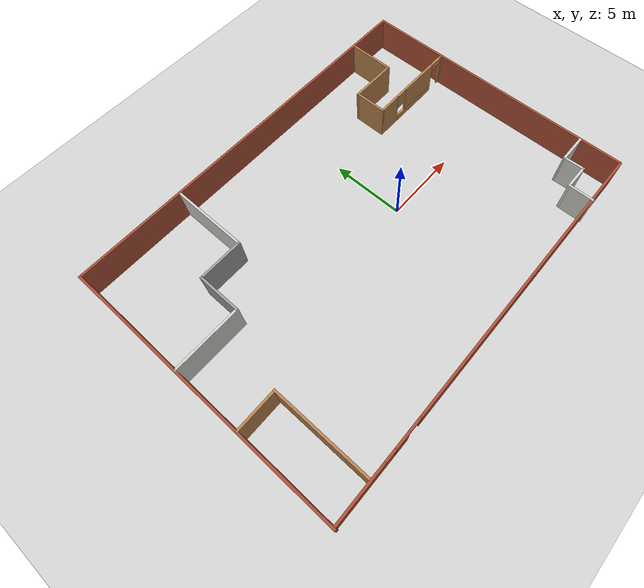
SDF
<sdf version="1.4">
 <world name="default">
  <include><uri>model://ground_plane</uri></include>
  <include><uri>model://sun</uri></include>
  <include><uri>model://amb2</uri></include>
 </world>
</sdf>

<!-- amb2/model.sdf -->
<sdf version='1.7'>
  <model name='amb2'>
    <pose>-2.71933 0.362005 0 0 -0 0</pose>
    <link name='Wall_1'>
      <pose>-0.000241 -9.48906 0 0 -0 0</pose>
      <visual name='Wall_1_Visual_0'>
        <pose>-11.393 0 1.25 0 -0 0</pose>
        <geometry>
          <box>
            <size>3.7141 0.15 2.5</size>
          </box>
        </geometry>
        <material>
          <script>
            <uri>file://media/materials/scripts/gazebo.material</uri>
            <name>Gazebo/Bricks</name>
          </script>
          <ambient>1 1 1 1</ambient>
        </material>
        <meta>
          <layer>0</layer>
        </meta>
      </visual>
      <collision name='Wall_1_Collision_0'>
        <geometry>
          <box>
            <size>3.7141 0.15 2.5</size>
          </box>
        </geometry>
        <pose>-11.393 0 1.25 0 -0 0</pose>
      </collision>
      <visual name='Wall_1_Visual_1'>
        <pose>3.2402 0 1.25 0 -0 0</pose>
        <geometry>
          <box>
            <size>20.0196 0.15 2.5</size>
          </box>
        </geometry>
        <material>
          <script>
            <uri>file://media/materials/scripts/gazebo.material</uri>
            <name>Gazebo/Bricks</name>
          </script>
          <ambient>1 1 1 1</ambient>
        </material>
        <meta>
          <layer>0</layer>
        </meta>
      </visual>
      <collision name='Wall_1_Collision_1'>
        <geometry>
          <box>
            <size>20.0196 0.15 2.5</size>
          </box>
        </geometry>
        <pose>3.2402 0 1.25 0 -0 0</pose>
      </collision>
      <visual name='Wall_1_Visual_2'>
        <pose>-8.60275 0 0.25 0 -0 0</pose>
        <geometry>
          <box>
            <size>1.8663 0.15 0.5</size>
          </box>
        </geometry>
        <material>
          <script>
            <uri>file://media/materials/scripts/gazebo.material</uri>
            <name>Gazebo/Bricks</name>
          </script>
          <ambient>1 1 1 1</ambient>
        </material>
        <meta>
          <layer>0</layer>
        </meta>
      </visual>
      <collision name='Wall_1_Collision_2'>
        <geometry>
          <box>
            <size>1.8663 0.15 0.5</size>
          </box>
        </geometry>
        <pose>-8.60275 0 0.25 0 -0 0</pose>
      </collision>
      <visual name='Wall_1_Visual_3'>
        <pose>-8.20275 0 1.5 0 -0 0</pose>
        <geometry>
          <box>
            <size>1.0663 0.15 2</size>
          </box>
        </geometry>
        <material>
          <script>
            <uri>file://media/materials/scripts/gazebo.material</uri>
            <name>Gazebo/Bricks</name>
          </script>
          <ambient>1 1 1 1</ambient>
        </material>
        <meta>
          <layer>0</layer>
        </meta>
      </visual>
      <collision name='Wall_1_Collision_3'>
        <geometry>
          <box>
            <size>1.0663 0.15 2</size>
          </box>
        </geometry>
        <pose>-8.20275 0 1.5 0 -0 0</pose>
      </collision>
      <visual name='Wall_1_Visual_4'>
        <pose>-9.1359 0 1.9 0 -0 0</pose>
        <geometry>
          <box>
            <size>0.8 0.15 1.2</size>
          </box>
        </geometry>
        <material>
          <script>
            <uri>file://media/materials/scripts/gazebo.material</uri>
            <name>Gazebo/Bricks</name>
          </script>
          <ambient>1 1 1 1</ambient>
        </material>
        <meta>
          <layer>0</layer>
        </meta>
      </visual>
      <collision name='Wall_1_Collision_4'>
        <geometry>
          <box>
            <size>0.8 0.15 1.2</size>
          </box>
        </geometry>
        <pose>-9.1359 0 1.9 0 -0 0</pose>
      </collision>
      <visual name='Wall_1_Visual_5'>
        <pose>-7.2196 0 2.25 0 -0 0</pose>
        <geometry>
          <box>
            <size>0.9 0.15 0.5</size>
          </box>
        </geometry>
        <material>
          <script>
            <uri>file://media/materials/scripts/gazebo.material</uri>
            <name>Gazebo/Bricks</name>
          </script>
          <ambient>1 1 1 1</ambient>
        </material>
        <meta>
          <layer>0</layer>
        </meta>
      </visual>
      <collision name='Wall_1_Collision_5'>
        <geometry>
          <box>
            <size>0.9 0.15 0.5</size>
          </box>
        </geometry>
        <pose>-7.2196 0 2.25 0 -0 0</pose>
      </collision>
    </link>
    <link name='Wall_10'>
      <collision name='Wall_10_Collision'>
        <geometry>
          <box>
            <size>3.25 0.15 2.5</size>
          </box>
        </geometry>
        <pose>0 0 1.25 0 -0 0</pose>
      </collision>
      <visual name='Wall_10_Visual'>
        <pose>0 0 1.25 0 -0 0</pose>
        <geometry>
          <box>
            <size>3.25 0.15 2.5</size>
          </box>
        </geometry>
        <material>
          <script>
            <uri>file://media/materials/scripts/gazebo.material</uri>
            <name>Gazebo/Wood</name>
          </script>
          <ambient>1 1 1 1</ambient>
        </material>
        <meta>
          <layer>0</layer>
        </meta>
      </visual>
      <pose>8.36638 6.44099 0 0 -0 3.14159</pose>
    </link>
    <link name='Wall_11'>
      <collision name='Wall_11_Collision'>
        <geometry>
          <box>
            <size>2.25 0.15 2.5</size>
          </box>
        </geometry>
        <pose>0 0 1.25 0 -0 0</pose>
      </collision>
      <visual name='Wall_11_Visual'>
        <pose>0 0 1.25 0 -0 0</pose>
        <geometry>
          <box>
            <size>2.25 0.15 2.5</size>
          </box>
        </geometry>
        <material>
          <script>
            <uri>file://media/materials/scripts/gazebo.material</uri>
            <name>Gazebo/Wood</name>
          </script>
          <ambient>1 1 1 1</ambient>
        </material>
        <meta>
          <layer>0</layer>
        </meta>
      </visual>
      <pose>6.81638 5.39098 0 0 -0 -1.5708</pose>
    </link>
    <link name='Wall_12'>
      <pose>9.99138 4.34098 0 0 -0 0</pose>
      <visual name='Wall_12_Visual_0'>
        <pose>-2.43975 0 1.25 0 -0 0</pose>
        <geometry>
          <box>
            <size>1.6205 0.15 2.5</size>
          </box>
        </geometry>
        <material>
          <script>
            <uri>file://media/materials/scripts/gazebo.material</uri>
            <name>Gazebo/Wood</name>
          </script>
          <ambient>1 1 1 1</ambient>
        </material>
        <meta>
          <layer>0</layer>
        </meta>
      </visual>
      <collision name='Wall_12_Collision_0'>
        <geometry>
          <box>
            <size>1.6205 0.15 2.5</size>
          </box>
        </geometry>
        <pose>-2.43975 0 1.25 0 -0 0</pose>
      </collision>
      <visual name='Wall_12_Visual_1'>
        <pose>3.08945 0 1.25 0 -0 0</pose>
        <geometry>
          <box>
            <size>0.321108 0.15 2.5</size>
          </box>
        </geometry>
        <material>
          <script>
            <uri>file://media/materials/scripts/gazebo.material</uri>
            <name>Gazebo/Wood</name>
          </script>
          <ambient>1 1 1 1</ambient>
        </material>
        <meta>
          <layer>0</layer>
        </meta>
      </visual>
      <collision name='Wall_12_Collision_1'>
        <geometry>
          <box>
            <size>0.321108 0.15 2.5</size>
          </box>
        </geometry>
        <pose>3.08945 0 1.25 0 -0 0</pose>
      </collision>
      <visual name='Wall_12_Visual_2'>
        <pose>0.199696 0 0.25 0 -0 0</pose>
        <geometry>
          <box>
            <size>3.65839 0.15 0.5</size>
          </box>
        </geometry>
        <material>
          <script>
            <uri>file://media/materials/scripts/gazebo.material</uri>
            <name>Gazebo/Wood</name>
          </script>
          <ambient>1 1 1 1</ambient>
        </material>
        <meta>
          <layer>0</layer>
        </meta>
      </visual>
      <collision name='Wall_12_Collision_2'>
        <geometry>
          <box>
            <size>3.65839 0.15 0.5</size>
          </box>
        </geometry>
        <pose>0.199696 0 0.25 0 -0 0</pose>
      </collision>
      <visual name='Wall_12_Visual_3'>
        <pose>0.599696 0 1.5 0 -0 0</pose>
        <geometry>
          <box>
            <size>2.85839 0.15 2</size>
          </box>
        </geometry>
        <material>
          <script>
            <uri>file://media/materials/scripts/gazebo.material</uri>
            <name>Gazebo/Wood</name>
          </script>
          <ambient>1 1 1 1</ambient>
        </material>
        <meta>
          <layer>0</layer>
        </meta>
      </visual>
      <collision name='Wall_12_Collision_3'>
        <geometry>
          <box>
            <size>2.85839 0.15 2</size>
          </box>
        </geometry>
        <pose>0.599696 0 1.5 0 -0 0</pose>
      </collision>
      <visual name='Wall_12_Visual_4'>
        <pose>-1.2295 0 1.9 0 -0 0</pose>
        <geometry>
          <box>
            <size>0.8 0.15 1.2</size>
          </box>
        </geometry>
        <material>
          <script>
            <uri>file://media/materials/scripts/gazebo.material</uri>
            <name>Gazebo/Wood</name>
          </script>
          <ambient>1 1 1 1</ambient>
        </material>
        <meta>
          <layer>0</layer>
        </meta>
      </visual>
      <collision name='Wall_12_Collision_4'>
        <geometry>
          <box>
            <size>0.8 0.15 1.2</size>
          </box>
        </geometry>
        <pose>-1.2295 0 1.9 0 -0 0</pose>
      </collision>
      <visual name='Wall_12_Visual_5'>
        <pose>2.47889 0 2.25 0 -0 0</pose>
        <geometry>
          <box>
            <size>0.9 0.15 0.5</size>
          </box>
        </geometry>
        <material>
          <script>
            <uri>file://media/materials/scripts/gazebo.material</uri>
            <name>Gazebo/Wood</name>
          </script>
          <ambient>1 1 1 1</ambient>
        </material>
        <meta>
          <layer>0</layer>
        </meta>
      </visual>
      <collision name='Wall_12_Collision_5'>
        <geometry>
          <box>
            <size>0.9 0.15 0.5</size>
          </box>
        </geometry>
        <pose>2.47889 0 2.25 0 -0 0</pose>
      </collision>
    </link>
    <link name='Wall_14'>
      <collision name='Wall_14_Collision'>
        <geometry>
          <box>
            <size>5.25 0.15 2.5</size>
          </box>
        </geometry>
        <pose>0 0 1.25 0 -0 0</pose>
      </collision>
      <visual name='Wall_14_Visual'>
        <pose>0 0 1.25 0 -0 0</pose>
        <geometry>
          <box>
            <size>5.25 0.15 2.5</size>
          </box>
        </geometry>
        <material>
          <script>
            <uri>file://media/materials/scripts/gazebo.material</uri>
            <name>Gazebo/CeilingTiled</name>
          </script>
          <ambient>1 1 1 1</ambient>
        </material>
        <meta>
          <layer>0</layer>
        </meta>
      </visual>
      <pose>-5.99828 6.94563 0 0 -0 -1.5708</pose>
    </link>
    <link name='Wall_15'>
      <collision name='Wall_15_Collision'>
        <geometry>
          <box>
            <size>3 0.15 2.5</size>
          </box>
        </geometry>
        <pose>0 0 1.25 0 -0 0</pose>
      </collision>
      <visual name='Wall_15_Visual'>
        <pose>0 0 1.25 0 -0 0</pose>
        <geometry>
          <box>
            <size>3 0.15 2.5</size>
          </box>
        </geometry>
        <material>
          <script>
            <uri>file://media/materials/scripts/gazebo.material</uri>
            <name>Gazebo/Grey</name>
          </script>
          <ambient>1 1 1 1</ambient>
        </material>
        <meta>
          <layer>0</layer>
        </meta>
      </visual>
      <pose>-7.42328 4.39563 0 0 -0 3.14159</pose>
    </link>
    <link name='Wall_16'>
      <collision name='Wall_16_Collision'>
        <geometry>
          <box>
            <size>3 0.15 2.5</size>
          </box>
        </geometry>
        <pose>0 0 1.25 0 -0 0</pose>
      </collision>
      <visual name='Wall_16_Visual'>
        <pose>0 0 1.25 0 -0 0</pose>
        <geometry>
          <box>
            <size>3 0.15 2.5</size>
          </box>
        </geometry>
        <material>
          <script>
            <uri>file://media/materials/scripts/gazebo.material</uri>
            <name>Gazebo/Grey</name>
          </script>
          <ambient>1 1 1 1</ambient>
        </material>
        <meta>
          <layer>0</layer>
        </meta>
      </visual>
      <pose>-8.84829 2.97063 0 0 -0 -1.5708</pose>
    </link>
    <link name='Wall_17'>
      <collision name='Wall_17_Collision'>
        <geometry>
          <box>
            <size>4.5 0.15 2.5</size>
          </box>
        </geometry>
        <pose>0 0 1.25 0 -0 0</pose>
      </collision>
      <visual name='Wall_17_Visual'>
        <pose>0 0 1.25 0 -0 0</pose>
        <geometry>
          <box>
            <size>4.5 0.15 2.5</size>
          </box>
        </geometry>
        <material>
          <script>
            <uri>file://media/materials/scripts/gazebo.material</uri>
            <name>Gazebo/CeilingTiled</name>
          </script>
          <ambient>1 1 1 1</ambient>
        </material>
        <meta>
          <layer>0</layer>
        </meta>
      </visual>
      <pose>-11.0233 1.54563 0 0 -0 3.14159</pose>
    </link>
    <link name='Wall_19'>
      <collision name='Wall_19_Collision'>
        <geometry>
          <box>
            <size>1.75 0.15 2.5</size>
          </box>
        </geometry>
        <pose>0 0 1.25 0 -0 0</pose>
      </collision>
      <visual name='Wall_19_Visual'>
        <pose>0 0 1.25 0 -0 0</pose>
        <geometry>
          <box>
            <size>1.75 0.15 2.5</size>
          </box>
        </geometry>
        <material>
          <script>
            <uri>file://media/materials/scripts/gazebo.material</uri>
            <name>Gazebo/CeilingTiled</name>
          </script>
          <ambient>1 1 1 1</ambient>
        </material>
        <meta>
          <layer>0</layer>
        </meta>
      </visual>
      <pose>9.78101 -8.74151 0 0 -0 1.5708</pose>
    </link>
    <link name='Wall_2'>
      <collision name='Wall_2_Collision'>
        <geometry>
          <box>
            <size>19.128 0.15 2.5</size>
          </box>
        </geometry>
        <pose>0 0 1.25 0 -0 0</pose>
      </collision>
      <visual name='Wall_2_Visual'>
        <pose>0 0 1.25 0 -0 0</pose>
        <geometry>
          <box>
            <size>19.128 0.15 2.5</size>
          </box>
        </geometry>
        <material>
          <script>
            <uri>file://media/materials/scripts/gazebo.material</uri>
            <name>Gazebo/Bricks</name>
          </script>
          <ambient>1 1 1 1</ambient>
        </material>
        <meta>
          <layer>0</layer>
        </meta>
      </visual>
      <pose>13.1748 0.060941 0 0 -0 1.57724</pose>
    </link>
    <link name='Wall_20'>
      <collision name='Wall_20_Collision'>
        <geometry>
          <box>
            <size>1.75 0.15 2.5</size>
          </box>
        </geometry>
        <pose>0 0 1.25 0 -0 0</pose>
      </collision>
      <visual name='Wall_20_Visual'>
        <pose>0 0 1.25 0 -0 0</pose>
        <geometry>
          <box>
            <size>1.75 0.15 2.5</size>
          </box>
        </geometry>
        <material>
          <script>
            <uri>file://media/materials/scripts/gazebo.material</uri>
            <name>Gazebo/CeilingTiled</name>
          </script>
          <ambient>1 1 1 1</ambient>
        </material>
        <meta>
          <layer>0</layer>
        </meta>
      </visual>
      <pose>10.581 -7.94151 0 0 -0 0</pose>
    </link>
    <link name='Wall_21'>
      <collision name='Wall_21_Collision'>
        <geometry>
          <box>
            <size>1.448 0.15 2.5</size>
          </box>
        </geometry>
        <pose>0 0 1.25 0 -0 0</pose>
      </collision>
      <visual name='Wall_21_Visual'>
        <pose>0 0 1.25 0 -0 0</pose>
        <geometry>
          <box>
            <size>1.448 0.15 2.5</size>
          </box>
        </geometry>
        <material>
          <script>
            <uri>file://media/materials/scripts/gazebo.material</uri>
            <name>Gazebo/CeilingTiled</name>
          </script>
          <ambient>1 1 1 1</ambient>
        </material>
        <meta>
          <layer>0</layer>
        </meta>
      </visual>
      <pose>11.3612 -7.29281 0 0 -0 1.6013</pose>
    </link>
    <link name='Wall_24'>
      <collision name='Wall_24_Collision'>
        <geometry>
          <box>
            <size>2 0.15 2.5</size>
          </box>
        </geometry>
        <pose>0 0 1.25 0 -0 0</pose>
      </collision>
      <visual name='Wall_24_Visual'>
        <pose>0 0 1.25 0 -0 0</pose>
        <geometry>
          <box>
            <size>2 0.15 2.5</size>
          </box>
        </geometry>
        <material>
          <script>
            <uri>file://media/materials/scripts/gazebo.material</uri>
            <name>Gazebo/CeilingTiled</name>
          </script>
          <ambient>1 1 1 1</ambient>
        </material>
        <meta>
          <layer>0</layer>
        </meta>
      </visual>
      <pose>12.2664 -6.64411 0 0 -0 0</pose>
    </link>
    <link name='Wall_26'>
      <collision name='Wall_26_Collision'>
        <geometry>
          <box>
            <size>6.5 0.15 2.5</size>
          </box>
        </geometry>
        <pose>0 0 1.25 0 -0 0</pose>
      </collision>
      <visual name='Wall_26_Visual'>
        <pose>0 0 1.25 0 -0 0</pose>
        <geometry>
          <box>
            <size>6.5 0.15 2.5</size>
          </box>
        </geometry>
        <material>
          <script>
            <uri>file://media/materials/scripts/gazebo.material</uri>
            <name>Gazebo/Wood</name>
          </script>
          <ambient>1 1 1 1</ambient>
        </material>
        <meta>
          <layer>0</layer>
        </meta>
      </visual>
      <pose>-10.5817 -6.23962 0 0 -0 1.5708</pose>
    </link>
    <link name='Wall_27'>
      <collision name='Wall_27_Collision'>
        <geometry>
          <box>
            <size>2.75 0.15 2.5</size>
          </box>
        </geometry>
        <pose>0 0 1.25 0 -0 0</pose>
      </collision>
      <visual name='Wall_27_Visual'>
        <pose>0 0 1.25 0 -0 0</pose>
        <geometry>
          <box>
            <size>2.75 0.15 2.5</size>
          </box>
        </geometry>
        <material>
          <script>
            <uri>file://media/materials/scripts/gazebo.material</uri>
            <name>Gazebo/Wood</name>
          </script>
          <ambient>1 1 1 1</ambient>
        </material>
        <meta>
          <layer>0</layer>
        </meta>
      </visual>
      <pose>-11.8817 -3.06462 0 0 -0 3.14159</pose>
    </link>
    <link name='Wall_3'>
      <collision name='Wall_3_Collision'>
        <geometry>
          <box>
            <size>26.5 0.15 2.5</size>
          </box>
        </geometry>
        <pose>0 0 1.25 0 -0 0</pose>
      </collision>
      <visual name='Wall_3_Visual'>
        <pose>0 0 1.25 0 -0 0</pose>
        <geometry>
          <box>
            <size>26.5 0.15 2.5</size>
          </box>
        </geometry>
        <material>
          <script>
            <uri>file://media/materials/scripts/gazebo.material</uri>
            <name>Gazebo/Bricks</name>
          </script>
          <ambient>1 1 1 1</ambient>
        </material>
        <meta>
          <layer>0</layer>
        </meta>
      </visual>
      <pose>-0.061421 9.54976 0 0 -0 3.14159</pose>
    </link>
    <link name='Wall_4'>
      <collision name='Wall_4_Collision'>
        <geometry>
          <box>
            <size>19.25 0.15 2.5</size>
          </box>
        </geometry>
        <pose>0 0 1.25 0 -0 0</pose>
      </collision>
      <visual name='Wall_4_Visual'>
        <pose>0 0 1.25 0 -0 0</pose>
        <geometry>
          <box>
            <size>19.25 0.15 2.5</size>
          </box>
        </geometry>
        <material>
          <script>
            <uri>file://media/materials/scripts/gazebo.material</uri>
            <name>Gazebo/Bricks</name>
          </script>
          <ambient>1 1 1 1</ambient>
        </material>
        <meta>
          <layer>0</layer>
        </meta>
      </visual>
      <pose>-13.2364 -0.00024 0 0 -0 -1.5708</pose>
    </link>
    <link name='Wall_9'>
      <collision name='Wall_9_Collision'>
        <geometry>
          <box>
            <size>3.25 0.15 2.5</size>
          </box>
        </geometry>
        <pose>0 0 1.25 0 -0 0</pose>
      </collision>
      <visual name='Wall_9_Visual'>
        <pose>0 0 1.25 0 -0 0</pose>
        <geometry>
          <box>
            <size>3.25 0.15 2.5</size>
          </box>
        </geometry>
        <material>
          <script>
            <uri>file://media/materials/scripts/gazebo.material</uri>
            <name>Gazebo/Wood</name>
          </script>
          <ambient>1 1 1 1</ambient>
        </material>
        <meta>
          <layer>0</layer>
        </meta>
      </visual>
      <pose>9.91638 7.99099 0 0 -0 -1.5708</pose>
    </link>
    <static>1</static>
  </model>
</sdf>
